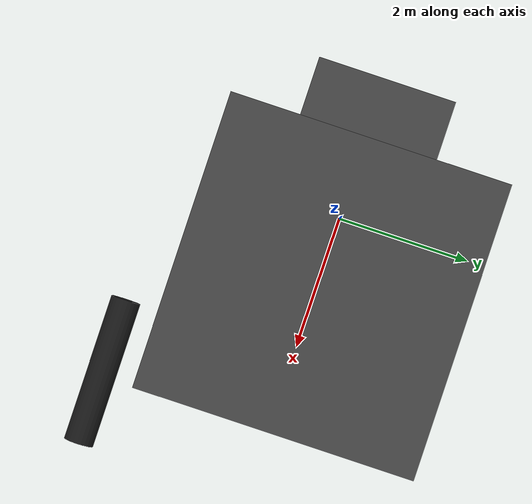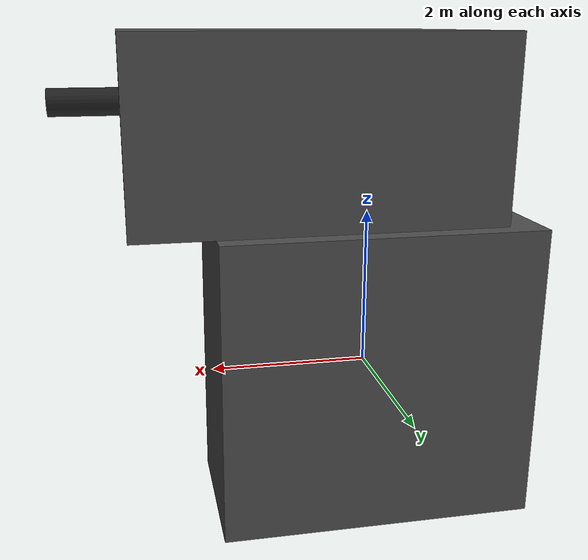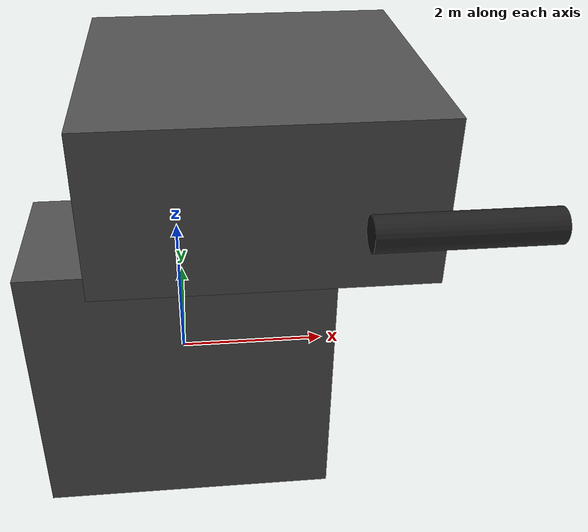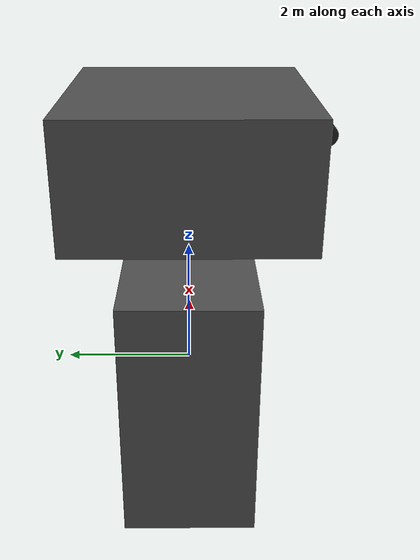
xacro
<?xml version="1.0"?>
<robot name="laser_turret" xmlns:xacro="http://www.ros.org/wiki/xacro">

	<!-- Constants for robot dimensions -->
	<xacro:property name="PI" value="3.1415926535897931"/>
	<xacro:property name="mass" value="10000"/>
	<xacro:property name="mass2" value="1"/>
	<xacro:property name="laser_mass" value="1"/>
	<xacro:property name="length" value="4.0"/>
	<xacro:property name="width" value="2.0"/>
	<xacro:property name="height" value="3.8"/>
	<xacro:property name="offset" value="0.4"/>
	<xacro:property name="radius" value="0.2"/>
	<!--	Including gazebo file	-->
	<xacro:include filename="$(find raksha)/urdf/servo.gazebo" />

  	<link name="servo1">
  		<collision>
  			<origin xyz="0 0 0" rpy="0 0 0"/>
  			<geometry>
  				<box size="${length} ${width} ${height}"/>
  			</geometry>
  		</collision>
  		<visual>
  			<origin xyz="0 0 0" rpy="0 0 0"/>
  			<geometry>
  				<box size="${length} ${width} ${height}"/>
  			</geometry>
  		</visual>
  		<inertial>
  			<origin xyz="0 0 0" rpy="0 0 0"/>
  			<mass value="${mass}"/>
  			<inertia
  				ixx="${mass/12.0*(height*height+width*width)}" ixy="0.0" ixz="0.0" iyy="${mass/12.0*(height*height+length*length)}" iyz="0.0" izz="${mass/12.0*(length*length+width*width)}"/>
  		</inertial>
  	</link>

  	<link name="servo2">
  		<collision>
  			<origin xyz="0 0 0" rpy="${PI*0.5} 0 0"/>
  			<geometry>
  				<box size="${length} ${width} ${height}"/>
  			</geometry>
  		</collision>
  		<visual>
  			<origin xyz="0 0 0" rpy="${PI*0.5} 0 0"/>
  			<geometry>
  				<box size="${length} ${width} ${height}"/>
  			</geometry>
  		</visual>
  		<inertial>
  			<origin xyz="0 0 0" rpy="${PI*0.5} 0 0"/>
  			<mass value="${mass2}"/>
  			<inertia
  				ixx="${mass2/12.0*(height*height+width*width)}" ixy="0.0" ixz="0.0" iyy="${mass2/12.0*(height*height+length*length)}" iyz="0.0" izz="${mass2/12.0*(length*length+width*width)}"/>
  		</inertial>
  	</link>

  	<joint name="joint1" type="continuous">
  		<parent link="servo1"/>
  		<child link="servo2"/>
  		<origin xyz="${length*0.25} 0 ${height-width*(0.5)+offset}" rpy="0 0 0"/>
  		<axis xyz="0 0 1"/>
  		<dynamics damping="0.7"/>
  	</joint>

  	<link name="laser">
  		<collision>
  			<origin xyz="0 0 0" rpy="0 0 0"/>
  			<geometry>
  				<cylinder radius="${radius}" length="${length*0.5}"/>
  			</geometry>
  		</collision>
  		<visual>
  			<origin xyz="0 0 0" rpy="0 0 0"/>
  			<geometry>
  				<cylinder radius="${radius}" length="${length*0.5}"/>
  			</geometry>
  		</visual>
  		<inertial>
  			<origin xyz="0 0 0" rpy="0 0 0"/>
  			<mass value="${laser_mass}"/>
  			<inertia ixx="${laser_mass/48*length*length+laser_mass/4*radius*radius}" ixy="0.0" ixz="0.0" iyy="${laser_mass/48*length*length+laser_mass/4*radius*radius}" iyz="0.0"
  				izz="${laser_mass/2*radius*radius}"/>
  		</inertial>
  	</link>

  	<joint name="joint2" type="continuous">
  		<parent link="servo2"/>
  		<child link="laser"/>
  		<origin xyz="${length*0.5} ${-(length*0.5+offset)} 0" rpy="0 ${PI*0.5} 0"/>
  		<axis xyz="0 1 0"/>
  		<dynamics damping="0.7"/>
  	</joint>

  	<transmission name="tran1">
  		<type>transmission_interface/SimpleTransmission</type>
  		<joint name="joint1">
  			<hardwareInterface>hardware_interface/EffortJointInterface</hardwareInterface>
  		</joint>
  		<actuator name="motor1">
  			<hardwareInterface>hardware_interface/EffortJointInterface</hardwareInterface>
  			<mechanicalReduction>1</mechanicalReduction>
  		</actuator>
  	</transmission>

  	<transmission name="tran2">
  		<type>transmission_interface/SimpleTransmission</type>
  		<joint name="joint2">
  			<hardwareInterface>hardware_interface/EffortJointInterface</hardwareInterface>
  		</joint>
  		<actuator name="motor2">
  			<hardwareInterface>hardware_interface/EffortJointInterface</hardwareInterface>
  			<mechanicalReduction>1</mechanicalReduction>
  		</actuator>
  	</transmission>
</robot>
